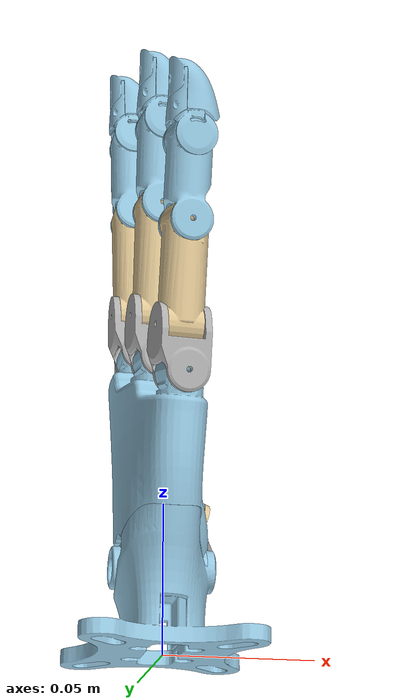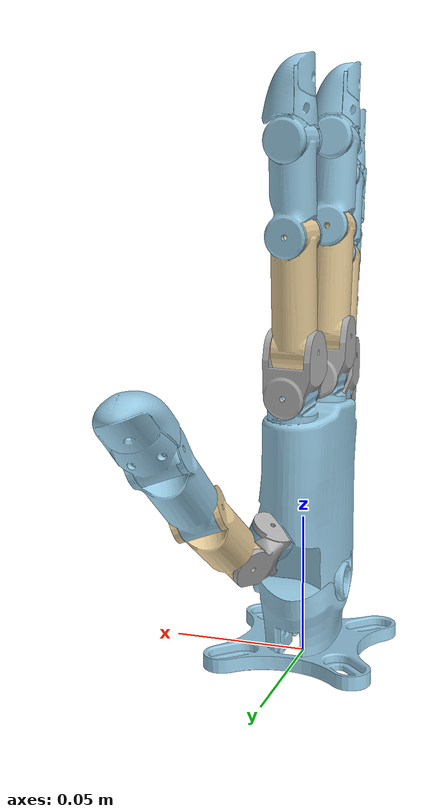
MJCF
<mujoco model="wujihand-right">
  <compiler angle="radian" meshdir="../meshes/right/" />
  <option jacobian="sparse" integrator="RK4" timestep="0.002" solver="Newton" iterations="50" tolerance="1e-10" />
  <default>
    <joint armature="0.0002" damping="0.0" />
  </default>
  <asset>
    <mesh name="r_base_link" content_type="model/stl" file="r_base_link.STL" />
    <mesh name="r_thumb_proximal" content_type="model/stl" file="r_thumb_proximal.STL" />
    <mesh name="r_thumb_proximal_abd" content_type="model/stl" file="r_thumb_proximal_abd.STL" />
    <mesh name="r_thumb_middle" content_type="model/stl" file="r_thumb_middle.STL" />
    <mesh name="r_thumb_distal" content_type="model/stl" file="r_thumb_distal.STL" />
    <mesh name="r_index_finger_proximal" content_type="model/stl" file="r_index_finger_proximal.STL" />
    <mesh name="r_index_finger_proximal_abd" content_type="model/stl" file="r_index_finger_proximal_abd.STL" />
    <mesh name="r_index_finger_middle" content_type="model/stl" file="r_index_finger_middle.STL" />
    <mesh name="r_index_finger_distal" content_type="model/stl" file="r_index_finger_distal.STL" />
    <mesh name="r_middle_finger_proximal" content_type="model/stl" file="r_middle_finger_proximal.STL" />
    <mesh name="r_middle_finger_proximal_abd" content_type="model/stl" file="r_middle_finger_proximal_abd.STL" />
    <mesh name="r_middle_finger_middle" content_type="model/stl" file="r_middle_finger_middle.STL" />
    <mesh name="r_middle_finger_distal" content_type="model/stl" file="r_middle_finger_distal.STL" />
    <mesh name="r_ring_finger_proximal" content_type="model/stl" file="r_ring_finger_proximal.STL" />
    <mesh name="r_ring_finger_proximal_abd" content_type="model/stl" file="r_ring_finger_proximal_abd.STL" />
    <mesh name="r_ring_finger_middle" content_type="model/stl" file="r_ring_finger_middle.STL" />
    <mesh name="r_ring_finger_distal" content_type="model/stl" file="r_ring_finger_distal.STL" />
    <mesh name="r_pinky_proximal" content_type="model/stl" file="r_pinky_proximal.STL" />
    <mesh name="r_pinky_proximal_abd" content_type="model/stl" file="r_pinky_proximal_abd.STL" />
    <mesh name="r_pinky_middle" content_type="model/stl" file="r_pinky_middle.STL" />
    <mesh name="r_pinky_distal" content_type="model/stl" file="r_pinky_distal.STL" />
    <mesh name="r_wrist" content_type="model/stl" file="r_wrist.STL" />
  </asset>
  <worldbody>
    <body name="r_base_link">
      <inertial pos="-0.00272850775526 -0.00107303771526 0.0533827160948" mass="0.3013" quat="0.03384030 0.01041875 0.99905755 -0.02510550" diaginertia="2.99905109e-04 2.36568961e-04 1.02188510e-04" />
      <geom type="mesh" contype="0" conaffinity="0" group="1" density="0" rgba="0.6 0.8 0.9 1" mesh="r_base_link" />
      <geom type="mesh" rgba="0.6 0.8 0.9 1" mesh="r_base_link" contype="1" conaffinity="1" />
      <geom pos="0.000250158 0.00300004 0.0284999" type="mesh" contype="0" conaffinity="0" group="1" density="0" rgba="0.6 0.8 0.9 1" mesh="r_wrist" />
      <geom pos="0.000250158 0.00300004 0.0284999" type="mesh" rgba="0.6 0.8 0.9 1" mesh="r_wrist" contype="1" conaffinity="1" />
      <body name="r_thumb_proximal" pos="0.00838841 0.0202095 0.0449574" quat="0.629428 -0.720111 -0.0606284 -0.285631">
        <inertial pos="-0.00195618 0.000853657 0.00731809" quat="0.395273 -0.0427462 0.0680097 0.915045" mass="0.011" diaginertia="8.38654e-07 7.81045e-07 6.3308e-07" />
        <joint name="r_thumb_cmc_flex" pos="0 0 0" axis="0 1 0" range="-1.187 1.291" actuatorfrcrange="-0.6 0.6" armature="0.0005" />
        <geom type="mesh" contype="0" conaffinity="0" group="1" density="0" rgba="0.7 0.7 0.7 1" mesh="r_thumb_proximal" />
        <geom type="mesh" rgba="0.7 0.7 0.7 1" mesh="r_thumb_proximal" contype="0" conaffinity="0" />
        <body name="r_thumb_proximal_abd" pos="-0.00053658 0.000247879 0.0147535" quat="0.677463 0.177193 0.307201 -0.644417">
          <inertial pos="-1.27934e-05 6.47331e-06 0.0130544" quat="0.857754 -0.00239204 -0.00124335 0.514054" mass="0.0336" diaginertia="4.2288e-06 4.08475e-06 1.2356e-06" />
          <joint name="r_thumb_cmc_abd" pos="0 0 0" axis="0 1 0" range="-1.484 0.698" actuatorfrcrange="-0.6 0.6" armature="0.0005" />
          <geom type="mesh" contype="0" conaffinity="0" group="1" density="0" rgba="0.9 0.8 0.6 1" mesh="r_thumb_proximal_abd" />
          <geom type="mesh" rgba="0.9 0.8 0.6 1" mesh="r_thumb_proximal_abd" contype="2" conaffinity="2" />
          <body name="r_thumb_middle" pos="0 0 0.0325" quat="0.875892 0.0382423 0.0209804 0.480531">
            <inertial pos="4.31169e-08 -4.92924e-05 0.0143056" quat="0.999999 -4.68311e-05 6.69742e-07 -0.00118251" mass="0.0358" diaginertia="4.92859e-06 4.8196e-06 1.32688e-06" />
            <joint name="r_thumb_mcp" pos="0 0 0" axis="0 1 0" range="-1.047 1.57" actuatorfrcrange="-0.3 0.3" />
            <geom type="mesh" contype="0" conaffinity="0" group="1" density="0" rgba="0.6 0.8 0.9 1" mesh="r_thumb_middle" />
            <geom type="mesh" rgba="0.6 0.8 0.9 1" mesh="r_thumb_middle" contype="1" conaffinity="1" />
            <body name="r_thumb_distal" pos="0 -5e-05 0.035">
              <inertial pos="0.000584113 -1.969e-05 0.0149297" quat="0.998214 -0.00602895 -0.0527021 -0.0274855" mass="0.0159" diaginertia="1.38099e-06 1.3339e-06 6.79986e-07" />
              <joint name="r_thumb_ip" pos="0 0 0" axis="0 1 0" range="-1.047 1.57" actuatorfrcrange="-0.3 0.3" />
              <geom type="mesh" contype="0" conaffinity="0" group="1" density="0" rgba="0.6 0.8 0.9 1" mesh="r_thumb_distal" />
              <geom type="mesh" rgba="0.6 0.8 0.9 1" mesh="r_thumb_distal" contype="1" conaffinity="1" />
              <site name="r_thumb_tip" pos="0 0 0.02978" group="3" size="0.002" rgba="1 0 0 1" />
            </body>
          </body>
        </body>
      </body>
      <body name="r_index_finger_proximal" pos="-0.00307463 0.025661 0.0984751" quat="0.996267 -0.0693674 -0.016387 -0.0487017">
        <inertial pos="-0.00178137 1.83198e-09 0.00760139" quat="0.706594 -0.0269145 -0.0269145 0.706594" mass="0.0116" diaginertia="9.19684e-07 9.08608e-07 7.88412e-07" />
        <joint name="r_index_finger_mcp_flex" pos="0 0 0" axis="0 1 0" range="-1.047 1.57" actuatorfrcrange="-2 2" armature="0.0005" />
        <geom type="mesh" contype="0" conaffinity="0" group="1" density="0" rgba="0.7 0.7 0.7 1" mesh="r_index_finger_proximal" />
        <geom type="mesh" rgba="0.7 0.7 0.7 1" mesh="r_index_finger_proximal" contype="0" conaffinity="0" />
        <body name="r_index_finger_proximal_abd" pos="-0.00120098 0 0.0145" quat="0.707107 0 0 0.707107">
          <inertial pos="8.04675e-08 -7.30404e-07 0.0187994" quat="0.983237 -1.60588e-05 -3.84243e-06 -0.18233" mass="0.0339" diaginertia="7.01589e-06 7.01555e-06 9.1448e-07" />
          <joint name="r_index_finger_mcp_abd" pos="0 0 0" axis="0 -1 0" range="-0.698 0.698" actuatorfrcrange="-0.2 0.2" />
          <geom type="mesh" contype="0" conaffinity="0" group="1" density="0" rgba="0.9 0.8 0.6 1" mesh="r_index_finger_proximal_abd" />
          <geom type="mesh" rgba="0.9 0.8 0.6 1" mesh="r_index_finger_proximal_abd" contype="2" conaffinity="2" />
          <body name="r_index_finger_middle" pos="0 0 0.0376" quat="0.707107 0 0 -0.707107">
            <inertial pos="-0.000247887 -5.07335e-08 0.0190348" quat="0.999883 7.82228e-06 0.0152755 0.000297981" mass="0.0212" diaginertia="2.47797e-06 2.40525e-06 6.52478e-07" />
            <joint name="r_index_finger_pip" pos="0 0 0" axis="0 1 0" range="-1.047 2.094" actuatorfrcrange="-0.3 0.3" />
            <geom type="mesh" contype="0" conaffinity="0" group="1" density="0" rgba="0.6 0.8 0.9 1" mesh="r_index_finger_middle" />
            <geom type="mesh" rgba="0.6 0.8 0.9 1" mesh="r_index_finger_middle" contype="1" conaffinity="1" />
            <body name="r_index_finger_distal" pos="0 0 0.0295">
              <inertial pos="-2.6809e-05 0.000450223 0.0122088" quat="0.995535 0.0584894 -0.0523628 0.0524081" mass="0.0078" diaginertia="5.687e-07 5.37521e-07 2.69652e-07" />
              <joint name="r_index_finger_dip" pos="0 0 0" axis="0 1 0" range="-1.047 1.57" actuatorfrcrange="-0.3 0.3" />
              <geom type="mesh" contype="0" conaffinity="0" group="1" density="0" rgba="0.6 0.8 0.9 1" mesh="r_index_finger_distal" />
              <geom type="mesh" rgba="0.6 0.8 0.9 1" mesh="r_index_finger_distal" contype="1" conaffinity="1" />
              <site name="r_index_finger_tip" pos="0 0 0.02475" group="3" size="0.002" rgba="1 0 0 1" />
            </body>
          </body>
        </body>
      </body>
      <body name="r_middle_finger_proximal" pos="-0.00805284 0.00395219 0.102415" quat="0.999841 0.00552374 -0.0169518 0.000255885">
        <inertial pos="-0.00178137 1.83198e-09 0.00760139" quat="0.706594 -0.0269145 -0.0269145 0.706594" mass="0.0116" diaginertia="9.19684e-07 9.08608e-07 7.88412e-07" />
        <joint name="r_middle_finger_mcp_flex" pos="0 0 0" axis="0 1 0" range="-1.047 1.57" actuatorfrcrange="-2 2" armature="0.0005" />
        <geom type="mesh" contype="0" conaffinity="0" group="1" density="0" rgba="0.7 0.7 0.7 1" mesh="r_middle_finger_proximal" />
        <geom type="mesh" rgba="0.7 0.7 0.7 1" mesh="r_middle_finger_proximal" contype="0" conaffinity="0" />
        <body name="r_middle_finger_proximal_abd" pos="-0.00120098 0 0.0145" quat="0.707107 0 0 0.707107">
          <inertial pos="8.04675e-08 -7.30404e-07 0.0187994" quat="0.983237 -1.60588e-05 -3.84243e-06 -0.18233" mass="0.0339" diaginertia="7.01589e-06 7.01555e-06 9.1448e-07" />
          <joint name="r_middle_finger_mcp_abd" pos="0 0 0" axis="0 -1 0" range="-0.698 0.698" actuatorfrcrange="-0.2 0.2" />
          <geom type="mesh" contype="0" conaffinity="0" group="1" density="0" rgba="0.9 0.8 0.6 1" mesh="r_middle_finger_proximal_abd" />
          <geom type="mesh" rgba="0.9 0.8 0.6 1" mesh="r_middle_finger_proximal_abd" contype="2" conaffinity="2" />
          <body name="r_middle_finger_middle" pos="0 0 0.0376" quat="0.707107 0 0 -0.707107">
            <inertial pos="-0.000247887 -5.07335e-08 0.0190348" quat="0.999883 7.82228e-06 0.0152755 0.000297981" mass="0.0212" diaginertia="2.47797e-06 2.40525e-06 6.52478e-07" />
            <joint name="r_middle_finger_pip" pos="0 0 0" axis="0 1 0" range="-1.047 2.094" actuatorfrcrange="-0.3 0.3" />
            <geom type="mesh" contype="0" conaffinity="0" group="1" density="0" rgba="0.6 0.8 0.9 1" mesh="r_middle_finger_middle" />
            <geom type="mesh" rgba="0.6 0.8 0.9 1" mesh="r_middle_finger_middle" contype="1" conaffinity="1" />
            <body name="r_middle_finger_distal" pos="0 0 0.0295">
              <inertial pos="-2.6809e-05 0.000450223 0.0122088" quat="0.995535 0.0584894 -0.0523628 0.0524081" mass="0.0078" diaginertia="5.687e-07 5.37521e-07 2.69652e-07" />
              <joint name="r_middle_finger_dip" pos="0 0 0" axis="0 1 0" range="-1.047 1.57" actuatorfrcrange="-0.3 0.3" />
              <geom type="mesh" contype="0" conaffinity="0" group="1" density="0" rgba="0.6 0.8 0.9 1" mesh="r_middle_finger_distal" />
              <geom type="mesh" rgba="0.6 0.8 0.9 1" mesh="r_middle_finger_distal" contype="1" conaffinity="1" />
              <site name="r_middle_finger_tip" pos="0 0 0.02475" group="3" size="0.002" rgba="1 0 0 1" />
            </body>
          </body>
        </body>
      </body>
      <body name="r_ring_finger_proximal" pos="-0.00534309 -0.0167437 0.0938997" quat="0.996897 0.0709975 -0.00588573 0.0334694">
        <inertial pos="-0.00178137 1.83198e-09 0.00760139" quat="0.706594 -0.0269145 -0.0269145 0.706594" mass="0.0116" diaginertia="9.19684e-07 9.08608e-07 7.88412e-07" />
        <joint name="r_ring_finger_mcp_flex" pos="0 0 0" axis="0 1 0" range="-1.047 1.57" actuatorfrcrange="-2 2" armature="0.0005" />
        <geom type="mesh" contype="0" conaffinity="0" group="1" density="0" rgba="0.7 0.7 0.7 1" mesh="r_ring_finger_proximal" />
        <geom type="mesh" rgba="0.7 0.7 0.7 1" mesh="r_ring_finger_proximal" contype="0" conaffinity="0" />
        <body name="r_ring_finger_proximal_abd" pos="-0.00120098 0 0.0145" quat="0.707107 0 0 0.707107">
          <inertial pos="8.04675e-08 -7.30404e-07 0.0187994" quat="0.983237 -1.60588e-05 -3.84243e-06 -0.18233" mass="0.0339" diaginertia="7.01589e-06 7.01555e-06 9.1448e-07" />
          <joint name="r_ring_finger_mcp_abd" pos="0 0 0" axis="0 -1 0" range="-0.698 0.698" actuatorfrcrange="-0.2 0.2" />
          <geom type="mesh" contype="0" conaffinity="0" group="1" density="0" rgba="0.9 0.8 0.6 1" mesh="r_ring_finger_proximal_abd" />
          <geom type="mesh" rgba="0.9 0.8 0.6 1" mesh="r_ring_finger_proximal_abd" contype="2" conaffinity="2" />
          <body name="r_ring_finger_middle" pos="0 0 0.0376" quat="0.707107 0 0 -0.707107">
            <inertial pos="-0.000247887 -5.07335e-08 0.0190348" quat="0.999883 7.82228e-06 0.0152755 0.000297981" mass="0.0212" diaginertia="2.47797e-06 2.40525e-06 6.52478e-07" />
            <joint name="r_ring_finger_pip" pos="0 0 0" axis="0 1 0" range="-1.047 2.094" actuatorfrcrange="-0.3 0.3" />
            <geom type="mesh" contype="0" conaffinity="0" group="1" density="0" rgba="0.6 0.8 0.9 1" mesh="r_ring_finger_middle" />
            <geom type="mesh" rgba="0.6 0.8 0.9 1" mesh="r_ring_finger_middle" contype="1" conaffinity="1" />
            <body name="r_ring_finger_distal" pos="0 0 0.0295">
              <inertial pos="-2.6809e-05 0.000450223 0.0122088" quat="0.995535 0.0584894 -0.0523628 0.0524081" mass="0.0078" diaginertia="5.687e-07 5.37521e-07 2.69652e-07" />
              <joint name="r_ring_finger_dip" pos="0 0 0" axis="0 1 0" range="-1.047 1.57" actuatorfrcrange="-0.3 0.3" />
              <geom type="mesh" contype="0" conaffinity="0" group="1" density="0" rgba="0.6 0.8 0.9 1" mesh="r_ring_finger_distal" />
              <geom type="mesh" rgba="0.6 0.8 0.9 1" mesh="r_ring_finger_distal" contype="1" conaffinity="1" />
              <site name="r_ring_finger_tip" pos="0 0 0.02475" group="3" size="0.002" rgba="1 0 0 1" />
            </body>
          </body>
        </body>
      </body>
      <body name="r_pinky_proximal" pos="-0.00048421 -0.0343506 0.0837961" quat="0.989991 0.124816 -0.006386 0.0655637">
        <inertial pos="-0.00178136 -2.12647e-07 0.00760145" quat="0.70667 -0.0268963 -0.0269307 0.706519" mass="0.0116" diaginertia="9.19664e-07 9.08603e-07 7.88413e-07" />
        <joint name="r_pinky_mcp_flex" pos="0 0 0" axis="0 1 0" range="-1.047 1.57" actuatorfrcrange="-2 2" armature="0.0005" />
        <geom type="mesh" contype="0" conaffinity="0" group="1" density="0" rgba="0.7 0.7 0.7 1" mesh="r_pinky_proximal" />
        <geom type="mesh" rgba="0.7 0.7 0.7 1" mesh="r_pinky_proximal" contype="0" conaffinity="0" />
        <body name="r_pinky_proximal_abd" pos="-0.00120098 0 0.0145" quat="0.70712 0 0 0.707094">
          <inertial pos="1.55647e-06 -5.4532e-07 0.016785" quat="0.647368 -3.02081e-05 7.77124e-06 0.762177" mass="0.0304" diaginertia="5.38014e-06 5.37944e-06 8.1771e-07" />
          <joint name="r_pinky_mcp_abd" pos="0 0 0" axis="0 -1 0" range="-0.698 0.698" actuatorfrcrange="-0.2 0.2" />
          <geom type="mesh" contype="0" conaffinity="0" group="1" density="0" rgba="0.9 0.8 0.6 1" mesh="r_pinky_proximal_abd" />
          <geom type="mesh" rgba="0.9 0.8 0.6 1" mesh="r_pinky_proximal_abd" contype="2" conaffinity="2" />
          <body name="r_pinky_middle" pos="0.0001 0 0.0336" quat="0.70712 0 0 -0.707094">
            <inertial pos="-0.000264491 -3.23236e-07 0.0178807" quat="0.999872 3.90058e-06 0.0159651 0.000317107" mass="0.0188" diaginertia="2.05957e-06 1.98647e-06 5.84911e-07" />
            <joint name="r_pinky_pip" pos="0 0 0" axis="0 1 0" range="-1.047 2.094" actuatorfrcrange="-0.3 0.3" />
            <geom type="mesh" contype="0" conaffinity="0" group="1" density="0" rgba="0.6 0.8 0.9 1" mesh="r_pinky_middle" />
            <geom type="mesh" rgba="0.6 0.8 0.9 1" mesh="r_pinky_middle" contype="1" conaffinity="1" />
            <body name="r_pinky_distal" pos="0 0 0.0275">
              <inertial pos="-0.000344833 0.000450223 0.012204" quat="0.994769 0.0578017 -0.0653262 0.0531671" mass="0.0078" diaginertia="5.687e-07 5.37521e-07 2.69652e-07" />
              <joint name="r_pinky_dip" pos="0 0 0" axis="0 1 0" range="-1.047 1.57" actuatorfrcrange="-0.3 0.3" />
              <geom type="mesh" contype="0" conaffinity="0" group="1" density="0" rgba="0.6 0.8 0.9 1" mesh="r_pinky_distal" />
              <geom type="mesh" rgba="0.6 0.8 0.9 1" mesh="r_pinky_distal" contype="1" conaffinity="1" />
              <site name="r_pinky_tip" pos="0 0 0.024755" group="3" size="0.002" rgba="1 0 0 1" />
            </body>
          </body>
        </body>
      </body>
    </body>
  </worldbody>
  <actuator>
    <position name="right_finger1_joint1_actuator" joint="r_thumb_cmc_flex" kp="0.40844710645048043" kv="0.020882010257063675" ctrlrange="-1.187 1.291" forcerange="-0.6 0.6" />
    <position name="right_finger1_joint2_actuator" joint="r_thumb_cmc_abd" kp="0.6858601063643346" kv="0.030610939996373314" ctrlrange="-1.484 0.698" forcerange="-0.6 0.6" />
    <position name="right_finger1_joint3_actuator" joint="r_thumb_mcp" kp="0.2391112196099482" kv="0.010181475050560962" ctrlrange="-1.047 1.57" forcerange="-0.3 0.3" />
    <position name="right_finger1_joint4_actuator" joint="r_thumb_ip" kp="0.20736128319711747" kv="0.00909698844675045" ctrlrange="-1.047 1.57" forcerange="-0.3 0.3" />
    <position name="right_finger2_joint1_actuator" joint="r_index_finger_mcp_flex" kp="0.37352218155860073" kv="0.01882274330029718" ctrlrange="-1.047 1.57" forcerange="-2 2" />
    <position name="right_finger2_joint2_actuator" joint="r_index_finger_mcp_abd" kp="0.45592448909027794" kv="0.019798167597016643" ctrlrange="-0.698 0.698" forcerange="-0.2 0.2" />
    <position name="right_finger2_joint3_actuator" joint="r_index_finger_pip" kp="0.24368366649522863" kv="0.010477031953162727" ctrlrange="-1.047 2.094" forcerange="-0.3 0.3" />
    <position name="right_finger2_joint4_actuator" joint="r_index_finger_dip" kp="0.18026971340925335" kv="0.008240212147903584" ctrlrange="-1.047 1.57" forcerange="-0.3 0.3" />
    <position name="right_finger3_joint1_actuator" joint="r_middle_finger_mcp_flex" kp="0.3687093483646485" kv="0.01848622487024593" ctrlrange="-1.047 1.57" forcerange="-2 2" />
    <position name="right_finger3_joint2_actuator" joint="r_middle_finger_mcp_abd" kp="0.4164253443634641" kv="0.018032947229953678" ctrlrange="-0.698 0.698" forcerange="-0.2 0.2" />
    <position name="right_finger3_joint3_actuator" joint="r_middle_finger_pip" kp="0.22218607502059182" kv="0.009592200014076666" ctrlrange="-1.047 2.094" forcerange="-0.3 0.3" />
    <position name="right_finger3_joint4_actuator" joint="r_middle_finger_dip" kp="0.19427606072023446" kv="0.009152994605972402" ctrlrange="-1.047 1.57" forcerange="-0.3 0.3" />
    <position name="right_finger4_joint1_actuator" joint="r_ring_finger_mcp_flex" kp="0.35718151495111794" kv="0.018376606800780005" ctrlrange="-1.047 1.57" forcerange="-2 2" />
    <position name="right_finger4_joint2_actuator" joint="r_ring_finger_mcp_abd" kp="0.42977315313086895" kv="0.01867700966212433" ctrlrange="-0.698 0.698" forcerange="-0.2 0.2" />
    <position name="right_finger4_joint3_actuator" joint="r_ring_finger_pip" kp="0.24930151196247122" kv="0.01059512121009555" ctrlrange="-1.047 2.094" forcerange="-0.3 0.3" />
    <position name="right_finger4_joint4_actuator" joint="r_ring_finger_dip" kp="0.2285032688178066" kv="0.009917602877441107" ctrlrange="-1.047 1.57" forcerange="-0.3 0.3" />
    <position name="right_finger5_joint1_actuator" joint="r_pinky_mcp_flex" kp="0.3655325975433942" kv="0.018616960278988272" ctrlrange="-1.047 1.57" forcerange="-2 2" />
    <position name="right_finger5_joint2_actuator" joint="r_pinky_mcp_abd" kp="0.41393113081120425" kv="0.018732177029667153" ctrlrange="-0.698 0.698" forcerange="-0.2 0.2" />
    <position name="right_finger5_joint3_actuator" joint="r_pinky_pip" kp="0.22729367621965954" kv="0.00951005441616486" ctrlrange="-1.047 2.094" forcerange="-0.3 0.3" />
    <position name="right_finger5_joint4_actuator" joint="r_pinky_dip" kp="0.1964723550341816" kv="0.009017295241756363" ctrlrange="-1.047 1.57" forcerange="-0.3 0.3" />
  </actuator>
  <contact>
    <exclude body1="r_base_link" body2="r_thumb_distal" />
    <exclude body1="r_base_link" body2="r_thumb_middle" />
    <exclude body1="r_index_finger_distal" body2="r_middle_finger_distal" />
    <exclude body1="r_index_finger_distal" body2="r_middle_finger_middle" />
    <exclude body1="r_index_finger_distal" body2="r_ring_finger_distal" />
    <exclude body1="r_index_finger_distal" body2="r_ring_finger_middle" />
    <exclude body1="r_index_finger_distal" body2="r_thumb_middle" />
    <exclude body1="r_index_finger_distal" body2="r_base_link" />
    <exclude body1="r_index_finger_middle" body2="r_middle_finger_distal" />
    <exclude body1="r_index_finger_middle" body2="r_middle_finger_middle" />
    <exclude body1="r_index_finger_middle" body2="r_ring_finger_distal" />
    <exclude body1="r_index_finger_middle" body2="r_ring_finger_middle" />
    <exclude body1="r_index_finger_proximal_abd" body2="r_middle_finger_proximal_abd" />
    <exclude body1="r_index_finger_proximal_abd" body2="r_thumb_proximal_abd" />
    <exclude body1="r_middle_finger_distal" body2="r_pinky_distal" />
    <exclude body1="r_middle_finger_distal" body2="r_pinky_middle" />
    <exclude body1="r_middle_finger_distal" body2="r_ring_finger_distal" />
    <exclude body1="r_middle_finger_distal" body2="r_ring_finger_middle" />
    <exclude body1="r_middle_finger_distal" body2="r_thumb_middle" />
    <exclude body1="r_middle_finger_distal" body2="r_base_link" />
    <exclude body1="r_middle_finger_middle" body2="r_pinky_distal" />
    <exclude body1="r_middle_finger_middle" body2="r_pinky_middle" />
    <exclude body1="r_middle_finger_middle" body2="r_ring_finger_distal" />
    <exclude body1="r_middle_finger_middle" body2="r_ring_finger_middle" />
    <exclude body1="r_middle_finger_proximal_abd" body2="r_ring_finger_proximal_abd" />
    <exclude body1="r_pinky_distal" body2="r_ring_finger_distal" />
    <exclude body1="r_pinky_distal" body2="r_ring_finger_middle" />
    <exclude body1="r_pinky_distal" body2="r_base_link" />
    <exclude body1="r_pinky_middle" body2="r_ring_finger_distal" />
    <exclude body1="r_pinky_middle" body2="r_ring_finger_middle" />
    <exclude body1="r_pinky_proximal_abd" body2="r_ring_finger_proximal_abd" />
    <exclude body1="r_ring_finger_distal" body2="r_base_link" />
  </contact>
</mujoco>
